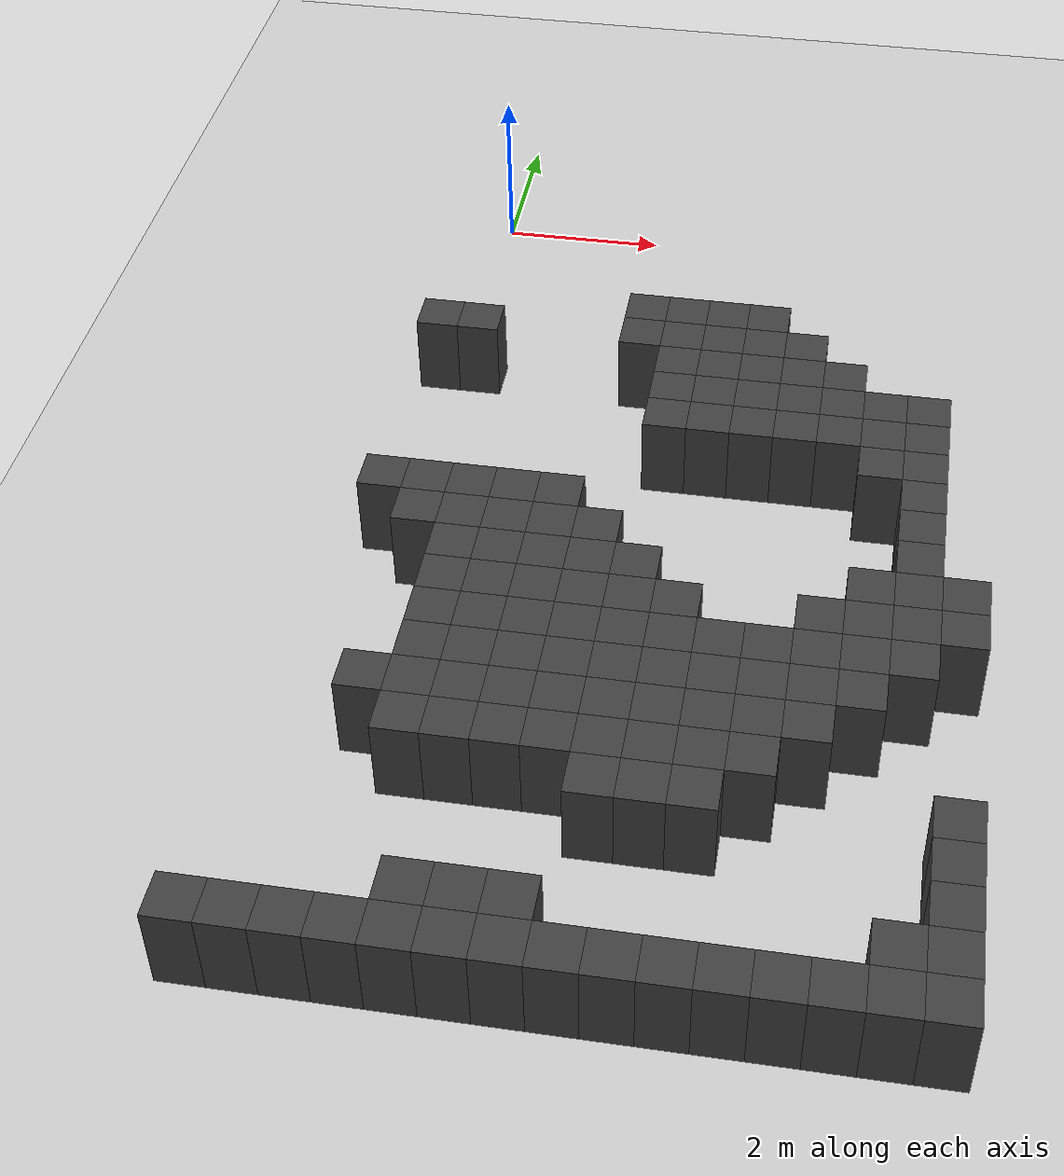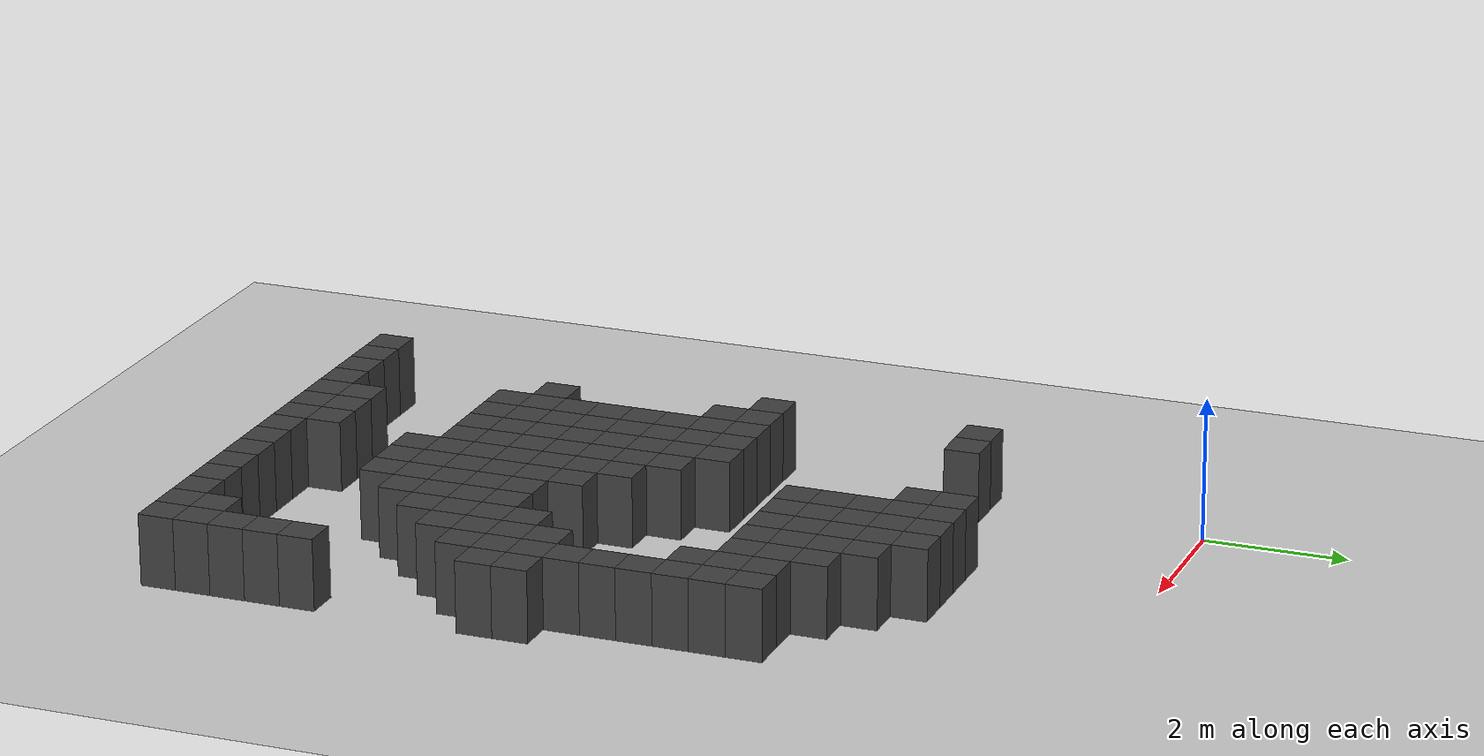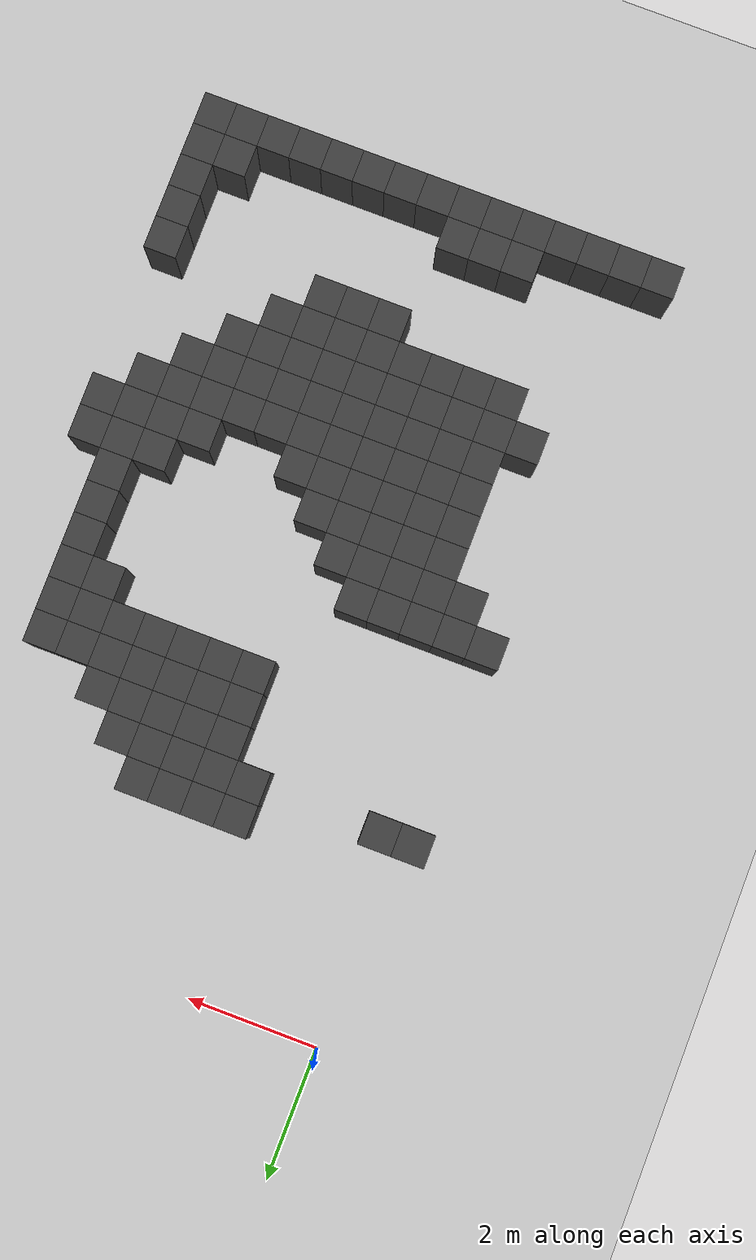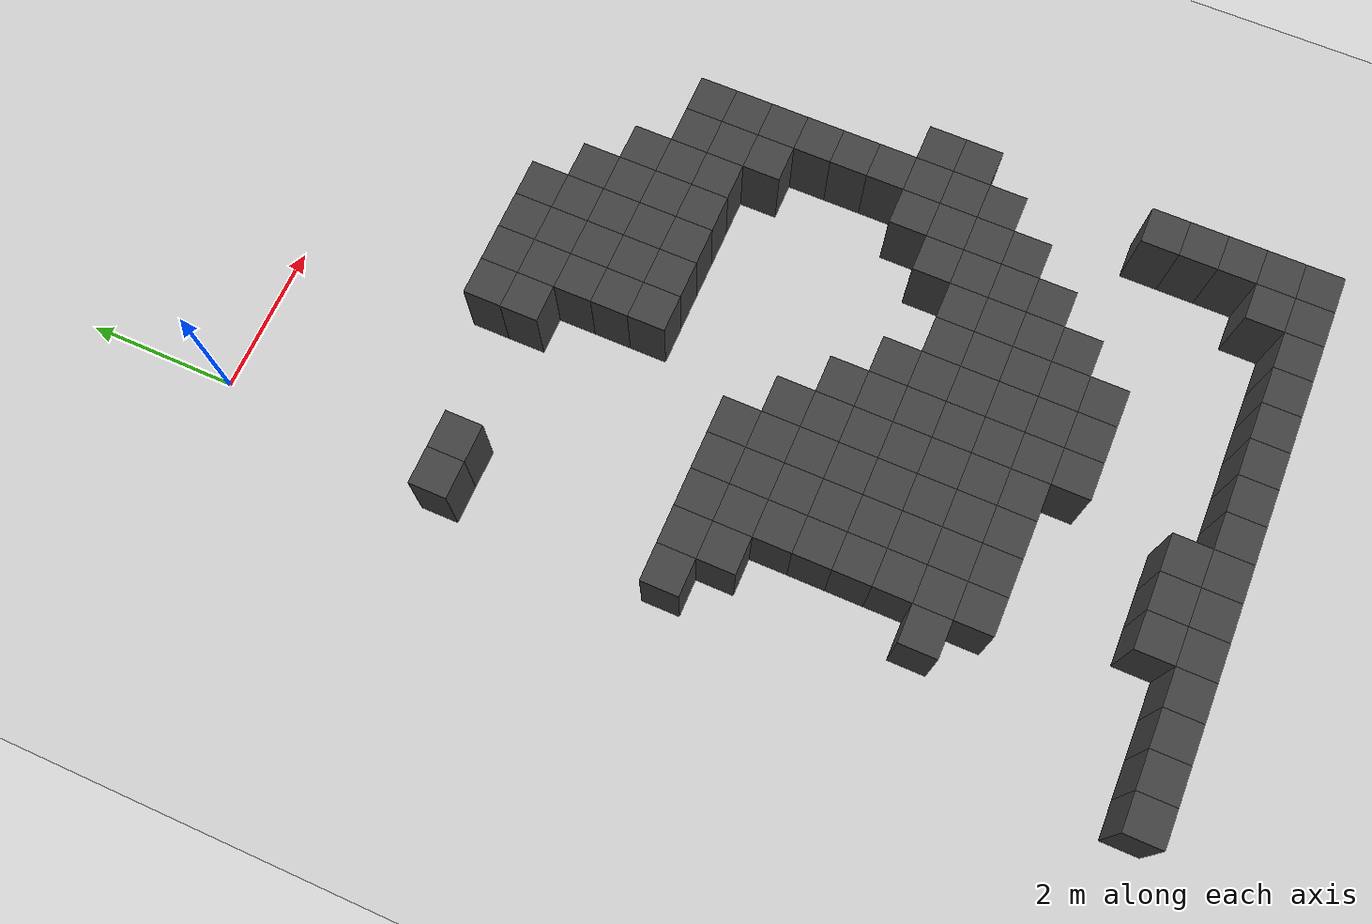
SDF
<sdf version="1.7">
 <world name="map_9544">
  <model name="ground_plane">
   <static>true</static>
   <link name="link">
    <collision name="collision">
     <geometry><plane><normal>0 0 1</normal><size>200 200</size></plane></geometry>
    </collision>
    <visual name="visual">
     <geometry><plane><normal>0 0 1</normal><size>200 200</size></plane></geometry>
     <material><ambient>0.8 0.8 0.8 1</ambient><diffuse>0.8 0.8 0.8 1</diffuse></material>
    </visual>
   </link>
  </model>
  <model name="maze_environment">
   <static>true</static>
   <link name="wall_507">
    <pose>2.250 -2.750 0.500 0 0 0</pose>
    <collision name="col"><geometry><box><size>0.5 0.5 1.0</size></box></geometry></collision>
    <visual name="vis">
     <geometry><box><size>0.5 0.5 1.0</size></box></geometry>
     <material><ambient>0.15 0.15 0.15 1</ambient><diffuse>0.25 0.25 0.25 1</diffuse></material>
    </visual>
   </link>
   <link name="wall_508">
    <pose>2.750 -2.750 0.500 0 0 0</pose>
    <collision name="col"><geometry><box><size>0.5 0.5 1.0</size></box></geometry></collision>
    <visual name="vis">
     <geometry><box><size>0.5 0.5 1.0</size></box></geometry>
     <material><ambient>0.15 0.15 0.15 1</ambient><diffuse>0.25 0.25 0.25 1</diffuse></material>
    </visual>
   </link>
   <link name="wall_509">
    <pose>3.250 -2.750 0.500 0 0 0</pose>
    <collision name="col"><geometry><box><size>0.5 0.5 1.0</size></box></geometry></collision>
    <visual name="vis">
     <geometry><box><size>0.5 0.5 1.0</size></box></geometry>
     <material><ambient>0.15 0.15 0.15 1</ambient><diffuse>0.25 0.25 0.25 1</diffuse></material>
    </visual>
   </link>
   <link name="wall_510">
    <pose>3.750 -2.750 0.500 0 0 0</pose>
    <collision name="col"><geometry><box><size>0.5 0.5 1.0</size></box></geometry></collision>
    <visual name="vis">
     <geometry><box><size>0.5 0.5 1.0</size></box></geometry>
     <material><ambient>0.15 0.15 0.15 1</ambient><diffuse>0.25 0.25 0.25 1</diffuse></material>
    </visual>
   </link>
   <link name="wall_526">
    <pose>-0.250 -3.250 0.500 0 0 0</pose>
    <collision name="col"><geometry><box><size>0.5 0.5 1.0</size></box></geometry></collision>
    <visual name="vis">
     <geometry><box><size>0.5 0.5 1.0</size></box></geometry>
     <material><ambient>0.15 0.15 0.15 1</ambient><diffuse>0.25 0.25 0.25 1</diffuse></material>
    </visual>
   </link>
   <link name="wall_527">
    <pose>0.250 -3.250 0.500 0 0 0</pose>
    <collision name="col"><geometry><box><size>0.5 0.5 1.0</size></box></geometry></collision>
    <visual name="vis">
     <geometry><box><size>0.5 0.5 1.0</size></box></geometry>
     <material><ambient>0.15 0.15 0.15 1</ambient><diffuse>0.25 0.25 0.25 1</diffuse></material>
    </visual>
   </link>
   <link name="wall_528">
    <pose>2.250 -3.250 0.500 0 0 0</pose>
    <collision name="col"><geometry><box><size>0.5 0.5 1.0</size></box></geometry></collision>
    <visual name="vis">
     <geometry><box><size>0.5 0.5 1.0</size></box></geometry>
     <material><ambient>0.15 0.15 0.15 1</ambient><diffuse>0.25 0.25 0.25 1</diffuse></material>
    </visual>
   </link>
   <link name="wall_529">
    <pose>2.750 -3.250 0.500 0 0 0</pose>
    <collision name="col"><geometry><box><size>0.5 0.5 1.0</size></box></geometry></collision>
    <visual name="vis">
     <geometry><box><size>0.5 0.5 1.0</size></box></geometry>
     <material><ambient>0.15 0.15 0.15 1</ambient><diffuse>0.25 0.25 0.25 1</diffuse></material>
    </visual>
   </link>
   <link name="wall_530">
    <pose>3.250 -3.250 0.500 0 0 0</pose>
    <collision name="col"><geometry><box><size>0.5 0.5 1.0</size></box></geometry></collision>
    <visual name="vis">
     <geometry><box><size>0.5 0.5 1.0</size></box></geometry>
     <material><ambient>0.15 0.15 0.15 1</ambient><diffuse>0.25 0.25 0.25 1</diffuse></material>
    </visual>
   </link>
   <link name="wall_531">
    <pose>3.750 -3.250 0.500 0 0 0</pose>
    <collision name="col"><geometry><box><size>0.5 0.5 1.0</size></box></geometry></collision>
    <visual name="vis">
     <geometry><box><size>0.5 0.5 1.0</size></box></geometry>
     <material><ambient>0.15 0.15 0.15 1</ambient><diffuse>0.25 0.25 0.25 1</diffuse></material>
    </visual>
   </link>
   <link name="wall_532">
    <pose>4.250 -3.250 0.500 0 0 0</pose>
    <collision name="col"><geometry><box><size>0.5 0.5 1.0</size></box></geometry></collision>
    <visual name="vis">
     <geometry><box><size>0.5 0.5 1.0</size></box></geometry>
     <material><ambient>0.15 0.15 0.15 1</ambient><diffuse>0.25 0.25 0.25 1</diffuse></material>
    </visual>
   </link>
   <link name="wall_548">
    <pose>2.750 -3.750 0.500 0 0 0</pose>
    <collision name="col"><geometry><box><size>0.5 0.5 1.0</size></box></geometry></collision>
    <visual name="vis">
     <geometry><box><size>0.5 0.5 1.0</size></box></geometry>
     <material><ambient>0.15 0.15 0.15 1</ambient><diffuse>0.25 0.25 0.25 1</diffuse></material>
    </visual>
   </link>
   <link name="wall_549">
    <pose>3.250 -3.750 0.500 0 0 0</pose>
    <collision name="col"><geometry><box><size>0.5 0.5 1.0</size></box></geometry></collision>
    <visual name="vis">
     <geometry><box><size>0.5 0.5 1.0</size></box></geometry>
     <material><ambient>0.15 0.15 0.15 1</ambient><diffuse>0.25 0.25 0.25 1</diffuse></material>
    </visual>
   </link>
   <link name="wall_550">
    <pose>3.750 -3.750 0.500 0 0 0</pose>
    <collision name="col"><geometry><box><size>0.5 0.5 1.0</size></box></geometry></collision>
    <visual name="vis">
     <geometry><box><size>0.5 0.5 1.0</size></box></geometry>
     <material><ambient>0.15 0.15 0.15 1</ambient><diffuse>0.25 0.25 0.25 1</diffuse></material>
    </visual>
   </link>
   <link name="wall_551">
    <pose>4.250 -3.750 0.500 0 0 0</pose>
    <collision name="col"><geometry><box><size>0.5 0.5 1.0</size></box></geometry></collision>
    <visual name="vis">
     <geometry><box><size>0.5 0.5 1.0</size></box></geometry>
     <material><ambient>0.15 0.15 0.15 1</ambient><diffuse>0.25 0.25 0.25 1</diffuse></material>
    </visual>
   </link>
   <link name="wall_552">
    <pose>4.750 -3.750 0.500 0 0 0</pose>
    <collision name="col"><geometry><box><size>0.5 0.5 1.0</size></box></geometry></collision>
    <visual name="vis">
     <geometry><box><size>0.5 0.5 1.0</size></box></geometry>
     <material><ambient>0.15 0.15 0.15 1</ambient><diffuse>0.25 0.25 0.25 1</diffuse></material>
    </visual>
   </link>
   <link name="wall_571">
    <pose>2.750 -4.250 0.500 0 0 0</pose>
    <collision name="col"><geometry><box><size>0.5 0.5 1.0</size></box></geometry></collision>
    <visual name="vis">
     <geometry><box><size>0.5 0.5 1.0</size></box></geometry>
     <material><ambient>0.15 0.15 0.15 1</ambient><diffuse>0.25 0.25 0.25 1</diffuse></material>
    </visual>
   </link>
   <link name="wall_572">
    <pose>3.250 -4.250 0.500 0 0 0</pose>
    <collision name="col"><geometry><box><size>0.5 0.5 1.0</size></box></geometry></collision>
    <visual name="vis">
     <geometry><box><size>0.5 0.5 1.0</size></box></geometry>
     <material><ambient>0.15 0.15 0.15 1</ambient><diffuse>0.25 0.25 0.25 1</diffuse></material>
    </visual>
   </link>
   <link name="wall_573">
    <pose>3.750 -4.250 0.500 0 0 0</pose>
    <collision name="col"><geometry><box><size>0.5 0.5 1.0</size></box></geometry></collision>
    <visual name="vis">
     <geometry><box><size>0.5 0.5 1.0</size></box></geometry>
     <material><ambient>0.15 0.15 0.15 1</ambient><diffuse>0.25 0.25 0.25 1</diffuse></material>
    </visual>
   </link>
   <link name="wall_574">
    <pose>4.250 -4.250 0.500 0 0 0</pose>
    <collision name="col"><geometry><box><size>0.5 0.5 1.0</size></box></geometry></collision>
    <visual name="vis">
     <geometry><box><size>0.5 0.5 1.0</size></box></geometry>
     <material><ambient>0.15 0.15 0.15 1</ambient><diffuse>0.25 0.25 0.25 1</diffuse></material>
    </visual>
   </link>
   <link name="wall_575">
    <pose>4.750 -4.250 0.500 0 0 0</pose>
    <collision name="col"><geometry><box><size>0.5 0.5 1.0</size></box></geometry></collision>
    <visual name="vis">
     <geometry><box><size>0.5 0.5 1.0</size></box></geometry>
     <material><ambient>0.15 0.15 0.15 1</ambient><diffuse>0.25 0.25 0.25 1</diffuse></material>
    </visual>
   </link>
   <link name="wall_576">
    <pose>5.250 -4.250 0.500 0 0 0</pose>
    <collision name="col"><geometry><box><size>0.5 0.5 1.0</size></box></geometry></collision>
    <visual name="vis">
     <geometry><box><size>0.5 0.5 1.0</size></box></geometry>
     <material><ambient>0.15 0.15 0.15 1</ambient><diffuse>0.25 0.25 0.25 1</diffuse></material>
    </visual>
   </link>
   <link name="wall_577">
    <pose>5.750 -4.250 0.500 0 0 0</pose>
    <collision name="col"><geometry><box><size>0.5 0.5 1.0</size></box></geometry></collision>
    <visual name="vis">
     <geometry><box><size>0.5 0.5 1.0</size></box></geometry>
     <material><ambient>0.15 0.15 0.15 1</ambient><diffuse>0.25 0.25 0.25 1</diffuse></material>
    </visual>
   </link>
   <link name="wall_601">
    <pose>2.750 -4.750 0.500 0 0 0</pose>
    <collision name="col"><geometry><box><size>0.5 0.5 1.0</size></box></geometry></collision>
    <visual name="vis">
     <geometry><box><size>0.5 0.5 1.0</size></box></geometry>
     <material><ambient>0.15 0.15 0.15 1</ambient><diffuse>0.25 0.25 0.25 1</diffuse></material>
    </visual>
   </link>
   <link name="wall_602">
    <pose>3.250 -4.750 0.500 0 0 0</pose>
    <collision name="col"><geometry><box><size>0.5 0.5 1.0</size></box></geometry></collision>
    <visual name="vis">
     <geometry><box><size>0.5 0.5 1.0</size></box></geometry>
     <material><ambient>0.15 0.15 0.15 1</ambient><diffuse>0.25 0.25 0.25 1</diffuse></material>
    </visual>
   </link>
   <link name="wall_603">
    <pose>3.750 -4.750 0.500 0 0 0</pose>
    <collision name="col"><geometry><box><size>0.5 0.5 1.0</size></box></geometry></collision>
    <visual name="vis">
     <geometry><box><size>0.5 0.5 1.0</size></box></geometry>
     <material><ambient>0.15 0.15 0.15 1</ambient><diffuse>0.25 0.25 0.25 1</diffuse></material>
    </visual>
   </link>
   <link name="wall_604">
    <pose>4.250 -4.750 0.500 0 0 0</pose>
    <collision name="col"><geometry><box><size>0.5 0.5 1.0</size></box></geometry></collision>
    <visual name="vis">
     <geometry><box><size>0.5 0.5 1.0</size></box></geometry>
     <material><ambient>0.15 0.15 0.15 1</ambient><diffuse>0.25 0.25 0.25 1</diffuse></material>
    </visual>
   </link>
   <link name="wall_605">
    <pose>4.750 -4.750 0.500 0 0 0</pose>
    <collision name="col"><geometry><box><size>0.5 0.5 1.0</size></box></geometry></collision>
    <visual name="vis">
     <geometry><box><size>0.5 0.5 1.0</size></box></geometry>
     <material><ambient>0.15 0.15 0.15 1</ambient><diffuse>0.25 0.25 0.25 1</diffuse></material>
    </visual>
   </link>
   <link name="wall_606">
    <pose>5.250 -4.750 0.500 0 0 0</pose>
    <collision name="col"><geometry><box><size>0.5 0.5 1.0</size></box></geometry></collision>
    <visual name="vis">
     <geometry><box><size>0.5 0.5 1.0</size></box></geometry>
     <material><ambient>0.15 0.15 0.15 1</ambient><diffuse>0.25 0.25 0.25 1</diffuse></material>
    </visual>
   </link>
   <link name="wall_607">
    <pose>5.750 -4.750 0.500 0 0 0</pose>
    <collision name="col"><geometry><box><size>0.5 0.5 1.0</size></box></geometry></collision>
    <visual name="vis">
     <geometry><box><size>0.5 0.5 1.0</size></box></geometry>
     <material><ambient>0.15 0.15 0.15 1</ambient><diffuse>0.25 0.25 0.25 1</diffuse></material>
    </visual>
   </link>
   <link name="wall_634">
    <pose>5.250 -5.250 0.500 0 0 0</pose>
    <collision name="col"><geometry><box><size>0.5 0.5 1.0</size></box></geometry></collision>
    <visual name="vis">
     <geometry><box><size>0.5 0.5 1.0</size></box></geometry>
     <material><ambient>0.15 0.15 0.15 1</ambient><diffuse>0.25 0.25 0.25 1</diffuse></material>
    </visual>
   </link>
   <link name="wall_635">
    <pose>5.750 -5.250 0.500 0 0 0</pose>
    <collision name="col"><geometry><box><size>0.5 0.5 1.0</size></box></geometry></collision>
    <visual name="vis">
     <geometry><box><size>0.5 0.5 1.0</size></box></geometry>
     <material><ambient>0.15 0.15 0.15 1</ambient><diffuse>0.25 0.25 0.25 1</diffuse></material>
    </visual>
   </link>
   <link name="wall_660">
    <pose>5.750 -5.750 0.500 0 0 0</pose>
    <collision name="col"><geometry><box><size>0.5 0.5 1.0</size></box></geometry></collision>
    <visual name="vis">
     <geometry><box><size>0.5 0.5 1.0</size></box></geometry>
     <material><ambient>0.15 0.15 0.15 1</ambient><diffuse>0.25 0.25 0.25 1</diffuse></material>
    </visual>
   </link>
   <link name="wall_684">
    <pose>-0.250 -6.250 0.500 0 0 0</pose>
    <collision name="col"><geometry><box><size>0.5 0.5 1.0</size></box></geometry></collision>
    <visual name="vis">
     <geometry><box><size>0.5 0.5 1.0</size></box></geometry>
     <material><ambient>0.15 0.15 0.15 1</ambient><diffuse>0.25 0.25 0.25 1</diffuse></material>
    </visual>
   </link>
   <link name="wall_685">
    <pose>0.250 -6.250 0.500 0 0 0</pose>
    <collision name="col"><geometry><box><size>0.5 0.5 1.0</size></box></geometry></collision>
    <visual name="vis">
     <geometry><box><size>0.5 0.5 1.0</size></box></geometry>
     <material><ambient>0.15 0.15 0.15 1</ambient><diffuse>0.25 0.25 0.25 1</diffuse></material>
    </visual>
   </link>
   <link name="wall_686">
    <pose>0.750 -6.250 0.500 0 0 0</pose>
    <collision name="col"><geometry><box><size>0.5 0.5 1.0</size></box></geometry></collision>
    <visual name="vis">
     <geometry><box><size>0.5 0.5 1.0</size></box></geometry>
     <material><ambient>0.15 0.15 0.15 1</ambient><diffuse>0.25 0.25 0.25 1</diffuse></material>
    </visual>
   </link>
   <link name="wall_687">
    <pose>1.250 -6.250 0.500 0 0 0</pose>
    <collision name="col"><geometry><box><size>0.5 0.5 1.0</size></box></geometry></collision>
    <visual name="vis">
     <geometry><box><size>0.5 0.5 1.0</size></box></geometry>
     <material><ambient>0.15 0.15 0.15 1</ambient><diffuse>0.25 0.25 0.25 1</diffuse></material>
    </visual>
   </link>
   <link name="wall_688">
    <pose>1.750 -6.250 0.500 0 0 0</pose>
    <collision name="col"><geometry><box><size>0.5 0.5 1.0</size></box></geometry></collision>
    <visual name="vis">
     <geometry><box><size>0.5 0.5 1.0</size></box></geometry>
     <material><ambient>0.15 0.15 0.15 1</ambient><diffuse>0.25 0.25 0.25 1</diffuse></material>
    </visual>
   </link>
   <link name="wall_689">
    <pose>5.750 -6.250 0.500 0 0 0</pose>
    <collision name="col"><geometry><box><size>0.5 0.5 1.0</size></box></geometry></collision>
    <visual name="vis">
     <geometry><box><size>0.5 0.5 1.0</size></box></geometry>
     <material><ambient>0.15 0.15 0.15 1</ambient><diffuse>0.25 0.25 0.25 1</diffuse></material>
    </visual>
   </link>
   <link name="wall_719">
    <pose>0.250 -6.750 0.500 0 0 0</pose>
    <collision name="col"><geometry><box><size>0.5 0.5 1.0</size></box></geometry></collision>
    <visual name="vis">
     <geometry><box><size>0.5 0.5 1.0</size></box></geometry>
     <material><ambient>0.15 0.15 0.15 1</ambient><diffuse>0.25 0.25 0.25 1</diffuse></material>
    </visual>
   </link>
   <link name="wall_720">
    <pose>0.750 -6.750 0.500 0 0 0</pose>
    <collision name="col"><geometry><box><size>0.5 0.5 1.0</size></box></geometry></collision>
    <visual name="vis">
     <geometry><box><size>0.5 0.5 1.0</size></box></geometry>
     <material><ambient>0.15 0.15 0.15 1</ambient><diffuse>0.25 0.25 0.25 1</diffuse></material>
    </visual>
   </link>
   <link name="wall_721">
    <pose>1.250 -6.750 0.500 0 0 0</pose>
    <collision name="col"><geometry><box><size>0.5 0.5 1.0</size></box></geometry></collision>
    <visual name="vis">
     <geometry><box><size>0.5 0.5 1.0</size></box></geometry>
     <material><ambient>0.15 0.15 0.15 1</ambient><diffuse>0.25 0.25 0.25 1</diffuse></material>
    </visual>
   </link>
   <link name="wall_722">
    <pose>1.750 -6.750 0.500 0 0 0</pose>
    <collision name="col"><geometry><box><size>0.5 0.5 1.0</size></box></geometry></collision>
    <visual name="vis">
     <geometry><box><size>0.5 0.5 1.0</size></box></geometry>
     <material><ambient>0.15 0.15 0.15 1</ambient><diffuse>0.25 0.25 0.25 1</diffuse></material>
    </visual>
   </link>
   <link name="wall_723">
    <pose>2.250 -6.750 0.500 0 0 0</pose>
    <collision name="col"><geometry><box><size>0.5 0.5 1.0</size></box></geometry></collision>
    <visual name="vis">
     <geometry><box><size>0.5 0.5 1.0</size></box></geometry>
     <material><ambient>0.15 0.15 0.15 1</ambient><diffuse>0.25 0.25 0.25 1</diffuse></material>
    </visual>
   </link>
   <link name="wall_724">
    <pose>5.750 -6.750 0.500 0 0 0</pose>
    <collision name="col"><geometry><box><size>0.5 0.5 1.0</size></box></geometry></collision>
    <visual name="vis">
     <geometry><box><size>0.5 0.5 1.0</size></box></geometry>
     <material><ambient>0.15 0.15 0.15 1</ambient><diffuse>0.25 0.25 0.25 1</diffuse></material>
    </visual>
   </link>
   <link name="wall_752">
    <pose>0.750 -7.250 0.500 0 0 0</pose>
    <collision name="col"><geometry><box><size>0.5 0.5 1.0</size></box></geometry></collision>
    <visual name="vis">
     <geometry><box><size>0.5 0.5 1.0</size></box></geometry>
     <material><ambient>0.15 0.15 0.15 1</ambient><diffuse>0.25 0.25 0.25 1</diffuse></material>
    </visual>
   </link>
   <link name="wall_753">
    <pose>1.250 -7.250 0.500 0 0 0</pose>
    <collision name="col"><geometry><box><size>0.5 0.5 1.0</size></box></geometry></collision>
    <visual name="vis">
     <geometry><box><size>0.5 0.5 1.0</size></box></geometry>
     <material><ambient>0.15 0.15 0.15 1</ambient><diffuse>0.25 0.25 0.25 1</diffuse></material>
    </visual>
   </link>
   <link name="wall_754">
    <pose>1.750 -7.250 0.500 0 0 0</pose>
    <collision name="col"><geometry><box><size>0.5 0.5 1.0</size></box></geometry></collision>
    <visual name="vis">
     <geometry><box><size>0.5 0.5 1.0</size></box></geometry>
     <material><ambient>0.15 0.15 0.15 1</ambient><diffuse>0.25 0.25 0.25 1</diffuse></material>
    </visual>
   </link>
   <link name="wall_755">
    <pose>2.250 -7.250 0.500 0 0 0</pose>
    <collision name="col"><geometry><box><size>0.5 0.5 1.0</size></box></geometry></collision>
    <visual name="vis">
     <geometry><box><size>0.5 0.5 1.0</size></box></geometry>
     <material><ambient>0.15 0.15 0.15 1</ambient><diffuse>0.25 0.25 0.25 1</diffuse></material>
    </visual>
   </link>
   <link name="wall_756">
    <pose>2.750 -7.250 0.500 0 0 0</pose>
    <collision name="col"><geometry><box><size>0.5 0.5 1.0</size></box></geometry></collision>
    <visual name="vis">
     <geometry><box><size>0.5 0.5 1.0</size></box></geometry>
     <material><ambient>0.15 0.15 0.15 1</ambient><diffuse>0.25 0.25 0.25 1</diffuse></material>
    </visual>
   </link>
   <link name="wall_757">
    <pose>5.250 -7.250 0.500 0 0 0</pose>
    <collision name="col"><geometry><box><size>0.5 0.5 1.0</size></box></geometry></collision>
    <visual name="vis">
     <geometry><box><size>0.5 0.5 1.0</size></box></geometry>
     <material><ambient>0.15 0.15 0.15 1</ambient><diffuse>0.25 0.25 0.25 1</diffuse></material>
    </visual>
   </link>
   <link name="wall_758">
    <pose>5.750 -7.250 0.500 0 0 0</pose>
    <collision name="col"><geometry><box><size>0.5 0.5 1.0</size></box></geometry></collision>
    <visual name="vis">
     <geometry><box><size>0.5 0.5 1.0</size></box></geometry>
     <material><ambient>0.15 0.15 0.15 1</ambient><diffuse>0.25 0.25 0.25 1</diffuse></material>
    </visual>
   </link>
   <link name="wall_759">
    <pose>6.250 -7.250 0.500 0 0 0</pose>
    <collision name="col"><geometry><box><size>0.5 0.5 1.0</size></box></geometry></collision>
    <visual name="vis">
     <geometry><box><size>0.5 0.5 1.0</size></box></geometry>
     <material><ambient>0.15 0.15 0.15 1</ambient><diffuse>0.25 0.25 0.25 1</diffuse></material>
    </visual>
   </link>
   <link name="wall_782">
    <pose>0.750 -7.750 0.500 0 0 0</pose>
    <collision name="col"><geometry><box><size>0.5 0.5 1.0</size></box></geometry></collision>
    <visual name="vis">
     <geometry><box><size>0.5 0.5 1.0</size></box></geometry>
     <material><ambient>0.15 0.15 0.15 1</ambient><diffuse>0.25 0.25 0.25 1</diffuse></material>
    </visual>
   </link>
   <link name="wall_783">
    <pose>1.250 -7.750 0.500 0 0 0</pose>
    <collision name="col"><geometry><box><size>0.5 0.5 1.0</size></box></geometry></collision>
    <visual name="vis">
     <geometry><box><size>0.5 0.5 1.0</size></box></geometry>
     <material><ambient>0.15 0.15 0.15 1</ambient><diffuse>0.25 0.25 0.25 1</diffuse></material>
    </visual>
   </link>
   <link name="wall_784">
    <pose>1.750 -7.750 0.500 0 0 0</pose>
    <collision name="col"><geometry><box><size>0.5 0.5 1.0</size></box></geometry></collision>
    <visual name="vis">
     <geometry><box><size>0.5 0.5 1.0</size></box></geometry>
     <material><ambient>0.15 0.15 0.15 1</ambient><diffuse>0.25 0.25 0.25 1</diffuse></material>
    </visual>
   </link>
   <link name="wall_785">
    <pose>2.250 -7.750 0.500 0 0 0</pose>
    <collision name="col"><geometry><box><size>0.5 0.5 1.0</size></box></geometry></collision>
    <visual name="vis">
     <geometry><box><size>0.5 0.5 1.0</size></box></geometry>
     <material><ambient>0.15 0.15 0.15 1</ambient><diffuse>0.25 0.25 0.25 1</diffuse></material>
    </visual>
   </link>
   <link name="wall_786">
    <pose>2.750 -7.750 0.500 0 0 0</pose>
    <collision name="col"><geometry><box><size>0.5 0.5 1.0</size></box></geometry></collision>
    <visual name="vis">
     <geometry><box><size>0.5 0.5 1.0</size></box></geometry>
     <material><ambient>0.15 0.15 0.15 1</ambient><diffuse>0.25 0.25 0.25 1</diffuse></material>
    </visual>
   </link>
   <link name="wall_787">
    <pose>3.250 -7.750 0.500 0 0 0</pose>
    <collision name="col"><geometry><box><size>0.5 0.5 1.0</size></box></geometry></collision>
    <visual name="vis">
     <geometry><box><size>0.5 0.5 1.0</size></box></geometry>
     <material><ambient>0.15 0.15 0.15 1</ambient><diffuse>0.25 0.25 0.25 1</diffuse></material>
    </visual>
   </link>
   <link name="wall_788">
    <pose>4.750 -7.750 0.500 0 0 0</pose>
    <collision name="col"><geometry><box><size>0.5 0.5 1.0</size></box></geometry></collision>
    <visual name="vis">
     <geometry><box><size>0.5 0.5 1.0</size></box></geometry>
     <material><ambient>0.15 0.15 0.15 1</ambient><diffuse>0.25 0.25 0.25 1</diffuse></material>
    </visual>
   </link>
   <link name="wall_789">
    <pose>5.250 -7.750 0.500 0 0 0</pose>
    <collision name="col"><geometry><box><size>0.5 0.5 1.0</size></box></geometry></collision>
    <visual name="vis">
     <geometry><box><size>0.5 0.5 1.0</size></box></geometry>
     <material><ambient>0.15 0.15 0.15 1</ambient><diffuse>0.25 0.25 0.25 1</diffuse></material>
    </visual>
   </link>
   <link name="wall_790">
    <pose>5.750 -7.750 0.500 0 0 0</pose>
    <collision name="col"><geometry><box><size>0.5 0.5 1.0</size></box></geometry></collision>
    <visual name="vis">
     <geometry><box><size>0.5 0.5 1.0</size></box></geometry>
     <material><ambient>0.15 0.15 0.15 1</ambient><diffuse>0.25 0.25 0.25 1</diffuse></material>
    </visual>
   </link>
   <link name="wall_791">
    <pose>6.250 -7.750 0.500 0 0 0</pose>
    <collision name="col"><geometry><box><size>0.5 0.5 1.0</size></box></geometry></collision>
    <visual name="vis">
     <geometry><box><size>0.5 0.5 1.0</size></box></geometry>
     <material><ambient>0.15 0.15 0.15 1</ambient><diffuse>0.25 0.25 0.25 1</diffuse></material>
    </visual>
   </link>
   <link name="wall_805">
    <pose>0.750 -8.250 0.500 0 0 0</pose>
    <collision name="col"><geometry><box><size>0.5 0.5 1.0</size></box></geometry></collision>
    <visual name="vis">
     <geometry><box><size>0.5 0.5 1.0</size></box></geometry>
     <material><ambient>0.15 0.15 0.15 1</ambient><diffuse>0.25 0.25 0.25 1</diffuse></material>
    </visual>
   </link>
   <link name="wall_806">
    <pose>1.250 -8.250 0.500 0 0 0</pose>
    <collision name="col"><geometry><box><size>0.5 0.5 1.0</size></box></geometry></collision>
    <visual name="vis">
     <geometry><box><size>0.5 0.5 1.0</size></box></geometry>
     <material><ambient>0.15 0.15 0.15 1</ambient><diffuse>0.25 0.25 0.25 1</diffuse></material>
    </visual>
   </link>
   <link name="wall_807">
    <pose>1.750 -8.250 0.500 0 0 0</pose>
    <collision name="col"><geometry><box><size>0.5 0.5 1.0</size></box></geometry></collision>
    <visual name="vis">
     <geometry><box><size>0.5 0.5 1.0</size></box></geometry>
     <material><ambient>0.15 0.15 0.15 1</ambient><diffuse>0.25 0.25 0.25 1</diffuse></material>
    </visual>
   </link>
   <link name="wall_808">
    <pose>2.250 -8.250 0.500 0 0 0</pose>
    <collision name="col"><geometry><box><size>0.5 0.5 1.0</size></box></geometry></collision>
    <visual name="vis">
     <geometry><box><size>0.5 0.5 1.0</size></box></geometry>
     <material><ambient>0.15 0.15 0.15 1</ambient><diffuse>0.25 0.25 0.25 1</diffuse></material>
    </visual>
   </link>
   <link name="wall_809">
    <pose>2.750 -8.250 0.500 0 0 0</pose>
    <collision name="col"><geometry><box><size>0.5 0.5 1.0</size></box></geometry></collision>
    <visual name="vis">
     <geometry><box><size>0.5 0.5 1.0</size></box></geometry>
     <material><ambient>0.15 0.15 0.15 1</ambient><diffuse>0.25 0.25 0.25 1</diffuse></material>
    </visual>
   </link>
   <link name="wall_810">
    <pose>3.250 -8.250 0.500 0 0 0</pose>
    <collision name="col"><geometry><box><size>0.5 0.5 1.0</size></box></geometry></collision>
    <visual name="vis">
     <geometry><box><size>0.5 0.5 1.0</size></box></geometry>
     <material><ambient>0.15 0.15 0.15 1</ambient><diffuse>0.25 0.25 0.25 1</diffuse></material>
    </visual>
   </link>
   <link name="wall_811">
    <pose>3.750 -8.250 0.500 0 0 0</pose>
    <collision name="col"><geometry><box><size>0.5 0.5 1.0</size></box></geometry></collision>
    <visual name="vis">
     <geometry><box><size>0.5 0.5 1.0</size></box></geometry>
     <material><ambient>0.15 0.15 0.15 1</ambient><diffuse>0.25 0.25 0.25 1</diffuse></material>
    </visual>
   </link>
   <link name="wall_812">
    <pose>4.250 -8.250 0.500 0 0 0</pose>
    <collision name="col"><geometry><box><size>0.5 0.5 1.0</size></box></geometry></collision>
    <visual name="vis">
     <geometry><box><size>0.5 0.5 1.0</size></box></geometry>
     <material><ambient>0.15 0.15 0.15 1</ambient><diffuse>0.25 0.25 0.25 1</diffuse></material>
    </visual>
   </link>
   <link name="wall_813">
    <pose>4.750 -8.250 0.500 0 0 0</pose>
    <collision name="col"><geometry><box><size>0.5 0.5 1.0</size></box></geometry></collision>
    <visual name="vis">
     <geometry><box><size>0.5 0.5 1.0</size></box></geometry>
     <material><ambient>0.15 0.15 0.15 1</ambient><diffuse>0.25 0.25 0.25 1</diffuse></material>
    </visual>
   </link>
   <link name="wall_814">
    <pose>5.250 -8.250 0.500 0 0 0</pose>
    <collision name="col"><geometry><box><size>0.5 0.5 1.0</size></box></geometry></collision>
    <visual name="vis">
     <geometry><box><size>0.5 0.5 1.0</size></box></geometry>
     <material><ambient>0.15 0.15 0.15 1</ambient><diffuse>0.25 0.25 0.25 1</diffuse></material>
    </visual>
   </link>
   <link name="wall_815">
    <pose>5.750 -8.250 0.500 0 0 0</pose>
    <collision name="col"><geometry><box><size>0.5 0.5 1.0</size></box></geometry></collision>
    <visual name="vis">
     <geometry><box><size>0.5 0.5 1.0</size></box></geometry>
     <material><ambient>0.15 0.15 0.15 1</ambient><diffuse>0.25 0.25 0.25 1</diffuse></material>
    </visual>
   </link>
   <link name="wall_826">
    <pose>0.750 -8.750 0.500 0 0 0</pose>
    <collision name="col"><geometry><box><size>0.5 0.5 1.0</size></box></geometry></collision>
    <visual name="vis">
     <geometry><box><size>0.5 0.5 1.0</size></box></geometry>
     <material><ambient>0.15 0.15 0.15 1</ambient><diffuse>0.25 0.25 0.25 1</diffuse></material>
    </visual>
   </link>
   <link name="wall_827">
    <pose>1.250 -8.750 0.500 0 0 0</pose>
    <collision name="col"><geometry><box><size>0.5 0.5 1.0</size></box></geometry></collision>
    <visual name="vis">
     <geometry><box><size>0.5 0.5 1.0</size></box></geometry>
     <material><ambient>0.15 0.15 0.15 1</ambient><diffuse>0.25 0.25 0.25 1</diffuse></material>
    </visual>
   </link>
   <link name="wall_828">
    <pose>1.750 -8.750 0.500 0 0 0</pose>
    <collision name="col"><geometry><box><size>0.5 0.5 1.0</size></box></geometry></collision>
    <visual name="vis">
     <geometry><box><size>0.5 0.5 1.0</size></box></geometry>
     <material><ambient>0.15 0.15 0.15 1</ambient><diffuse>0.25 0.25 0.25 1</diffuse></material>
    </visual>
   </link>
   <link name="wall_829">
    <pose>2.250 -8.750 0.500 0 0 0</pose>
    <collision name="col"><geometry><box><size>0.5 0.5 1.0</size></box></geometry></collision>
    <visual name="vis">
     <geometry><box><size>0.5 0.5 1.0</size></box></geometry>
     <material><ambient>0.15 0.15 0.15 1</ambient><diffuse>0.25 0.25 0.25 1</diffuse></material>
    </visual>
   </link>
   <link name="wall_830">
    <pose>2.750 -8.750 0.500 0 0 0</pose>
    <collision name="col"><geometry><box><size>0.5 0.5 1.0</size></box></geometry></collision>
    <visual name="vis">
     <geometry><box><size>0.5 0.5 1.0</size></box></geometry>
     <material><ambient>0.15 0.15 0.15 1</ambient><diffuse>0.25 0.25 0.25 1</diffuse></material>
    </visual>
   </link>
   <link name="wall_831">
    <pose>3.250 -8.750 0.500 0 0 0</pose>
    <collision name="col"><geometry><box><size>0.5 0.5 1.0</size></box></geometry></collision>
    <visual name="vis">
     <geometry><box><size>0.5 0.5 1.0</size></box></geometry>
     <material><ambient>0.15 0.15 0.15 1</ambient><diffuse>0.25 0.25 0.25 1</diffuse></material>
    </visual>
   </link>
   <link name="wall_832">
    <pose>3.750 -8.750 0.500 0 0 0</pose>
    <collision name="col"><geometry><box><size>0.5 0.5 1.0</size></box></geometry></collision>
    <visual name="vis">
     <geometry><box><size>0.5 0.5 1.0</size></box></geometry>
     <material><ambient>0.15 0.15 0.15 1</ambient><diffuse>0.25 0.25 0.25 1</diffuse></material>
    </visual>
   </link>
   <link name="wall_833">
    <pose>4.250 -8.750 0.500 0 0 0</pose>
    <collision name="col"><geometry><box><size>0.5 0.5 1.0</size></box></geometry></collision>
    <visual name="vis">
     <geometry><box><size>0.5 0.5 1.0</size></box></geometry>
     <material><ambient>0.15 0.15 0.15 1</ambient><diffuse>0.25 0.25 0.25 1</diffuse></material>
    </visual>
   </link>
   <link name="wall_834">
    <pose>4.750 -8.750 0.500 0 0 0</pose>
    <collision name="col"><geometry><box><size>0.5 0.5 1.0</size></box></geometry></collision>
    <visual name="vis">
     <geometry><box><size>0.5 0.5 1.0</size></box></geometry>
     <material><ambient>0.15 0.15 0.15 1</ambient><diffuse>0.25 0.25 0.25 1</diffuse></material>
    </visual>
   </link>
   <link name="wall_835">
    <pose>5.250 -8.750 0.500 0 0 0</pose>
    <collision name="col"><geometry><box><size>0.5 0.5 1.0</size></box></geometry></collision>
    <visual name="vis">
     <geometry><box><size>0.5 0.5 1.0</size></box></geometry>
     <material><ambient>0.15 0.15 0.15 1</ambient><diffuse>0.25 0.25 0.25 1</diffuse></material>
    </visual>
   </link>
   <link name="wall_849">
    <pose>0.250 -9.250 0.500 0 0 0</pose>
    <collision name="col"><geometry><box><size>0.5 0.5 1.0</size></box></geometry></collision>
    <visual name="vis">
     <geometry><box><size>0.5 0.5 1.0</size></box></geometry>
     <material><ambient>0.15 0.15 0.15 1</ambient><diffuse>0.25 0.25 0.25 1</diffuse></material>
    </visual>
   </link>
   <link name="wall_850">
    <pose>0.750 -9.250 0.500 0 0 0</pose>
    <collision name="col"><geometry><box><size>0.5 0.5 1.0</size></box></geometry></collision>
    <visual name="vis">
     <geometry><box><size>0.5 0.5 1.0</size></box></geometry>
     <material><ambient>0.15 0.15 0.15 1</ambient><diffuse>0.25 0.25 0.25 1</diffuse></material>
    </visual>
   </link>
   <link name="wall_851">
    <pose>1.250 -9.250 0.500 0 0 0</pose>
    <collision name="col"><geometry><box><size>0.5 0.5 1.0</size></box></geometry></collision>
    <visual name="vis">
     <geometry><box><size>0.5 0.5 1.0</size></box></geometry>
     <material><ambient>0.15 0.15 0.15 1</ambient><diffuse>0.25 0.25 0.25 1</diffuse></material>
    </visual>
   </link>
   <link name="wall_852">
    <pose>1.750 -9.250 0.500 0 0 0</pose>
    <collision name="col"><geometry><box><size>0.5 0.5 1.0</size></box></geometry></collision>
    <visual name="vis">
     <geometry><box><size>0.5 0.5 1.0</size></box></geometry>
     <material><ambient>0.15 0.15 0.15 1</ambient><diffuse>0.25 0.25 0.25 1</diffuse></material>
    </visual>
   </link>
   <link name="wall_853">
    <pose>2.250 -9.250 0.500 0 0 0</pose>
    <collision name="col"><geometry><box><size>0.5 0.5 1.0</size></box></geometry></collision>
    <visual name="vis">
     <geometry><box><size>0.5 0.5 1.0</size></box></geometry>
     <material><ambient>0.15 0.15 0.15 1</ambient><diffuse>0.25 0.25 0.25 1</diffuse></material>
    </visual>
   </link>
   <link name="wall_854">
    <pose>2.750 -9.250 0.500 0 0 0</pose>
    <collision name="col"><geometry><box><size>0.5 0.5 1.0</size></box></geometry></collision>
    <visual name="vis">
     <geometry><box><size>0.5 0.5 1.0</size></box></geometry>
     <material><ambient>0.15 0.15 0.15 1</ambient><diffuse>0.25 0.25 0.25 1</diffuse></material>
    </visual>
   </link>
   <link name="wall_855">
    <pose>3.250 -9.250 0.500 0 0 0</pose>
    <collision name="col"><geometry><box><size>0.5 0.5 1.0</size></box></geometry></collision>
    <visual name="vis">
     <geometry><box><size>0.5 0.5 1.0</size></box></geometry>
     <material><ambient>0.15 0.15 0.15 1</ambient><diffuse>0.25 0.25 0.25 1</diffuse></material>
    </visual>
   </link>
   <link name="wall_856">
    <pose>3.750 -9.250 0.500 0 0 0</pose>
    <collision name="col"><geometry><box><size>0.5 0.5 1.0</size></box></geometry></collision>
    <visual name="vis">
     <geometry><box><size>0.5 0.5 1.0</size></box></geometry>
     <material><ambient>0.15 0.15 0.15 1</ambient><diffuse>0.25 0.25 0.25 1</diffuse></material>
    </visual>
   </link>
   <link name="wall_857">
    <pose>4.250 -9.250 0.500 0 0 0</pose>
    <collision name="col"><geometry><box><size>0.5 0.5 1.0</size></box></geometry></collision>
    <visual name="vis">
     <geometry><box><size>0.5 0.5 1.0</size></box></geometry>
     <material><ambient>0.15 0.15 0.15 1</ambient><diffuse>0.25 0.25 0.25 1</diffuse></material>
    </visual>
   </link>
   <link name="wall_858">
    <pose>4.750 -9.250 0.500 0 0 0</pose>
    <collision name="col"><geometry><box><size>0.5 0.5 1.0</size></box></geometry></collision>
    <visual name="vis">
     <geometry><box><size>0.5 0.5 1.0</size></box></geometry>
     <material><ambient>0.15 0.15 0.15 1</ambient><diffuse>0.25 0.25 0.25 1</diffuse></material>
    </visual>
   </link>
   <link name="wall_877">
    <pose>0.750 -9.750 0.500 0 0 0</pose>
    <collision name="col"><geometry><box><size>0.5 0.5 1.0</size></box></geometry></collision>
    <visual name="vis">
     <geometry><box><size>0.5 0.5 1.0</size></box></geometry>
     <material><ambient>0.15 0.15 0.15 1</ambient><diffuse>0.25 0.25 0.25 1</diffuse></material>
    </visual>
   </link>
   <link name="wall_878">
    <pose>1.250 -9.750 0.500 0 0 0</pose>
    <collision name="col"><geometry><box><size>0.5 0.5 1.0</size></box></geometry></collision>
    <visual name="vis">
     <geometry><box><size>0.5 0.5 1.0</size></box></geometry>
     <material><ambient>0.15 0.15 0.15 1</ambient><diffuse>0.25 0.25 0.25 1</diffuse></material>
    </visual>
   </link>
   <link name="wall_879">
    <pose>1.750 -9.750 0.500 0 0 0</pose>
    <collision name="col"><geometry><box><size>0.5 0.5 1.0</size></box></geometry></collision>
    <visual name="vis">
     <geometry><box><size>0.5 0.5 1.0</size></box></geometry>
     <material><ambient>0.15 0.15 0.15 1</ambient><diffuse>0.25 0.25 0.25 1</diffuse></material>
    </visual>
   </link>
   <link name="wall_880">
    <pose>2.250 -9.750 0.500 0 0 0</pose>
    <collision name="col"><geometry><box><size>0.5 0.5 1.0</size></box></geometry></collision>
    <visual name="vis">
     <geometry><box><size>0.5 0.5 1.0</size></box></geometry>
     <material><ambient>0.15 0.15 0.15 1</ambient><diffuse>0.25 0.25 0.25 1</diffuse></material>
    </visual>
   </link>
   <link name="wall_881">
    <pose>2.750 -9.750 0.500 0 0 0</pose>
    <collision name="col"><geometry><box><size>0.5 0.5 1.0</size></box></geometry></collision>
    <visual name="vis">
     <geometry><box><size>0.5 0.5 1.0</size></box></geometry>
     <material><ambient>0.15 0.15 0.15 1</ambient><diffuse>0.25 0.25 0.25 1</diffuse></material>
    </visual>
   </link>
   <link name="wall_882">
    <pose>3.250 -9.750 0.500 0 0 0</pose>
    <collision name="col"><geometry><box><size>0.5 0.5 1.0</size></box></geometry></collision>
    <visual name="vis">
     <geometry><box><size>0.5 0.5 1.0</size></box></geometry>
     <material><ambient>0.15 0.15 0.15 1</ambient><diffuse>0.25 0.25 0.25 1</diffuse></material>
    </visual>
   </link>
   <link name="wall_883">
    <pose>3.750 -9.750 0.500 0 0 0</pose>
    <collision name="col"><geometry><box><size>0.5 0.5 1.0</size></box></geometry></collision>
    <visual name="vis">
     <geometry><box><size>0.5 0.5 1.0</size></box></geometry>
     <material><ambient>0.15 0.15 0.15 1</ambient><diffuse>0.25 0.25 0.25 1</diffuse></material>
    </visual>
   </link>
   <link name="wall_884">
    <pose>4.250 -9.750 0.500 0 0 0</pose>
    <collision name="col"><geometry><box><size>0.5 0.5 1.0</size></box></geometry></collision>
    <visual name="vis">
     <geometry><box><size>0.5 0.5 1.0</size></box></geometry>
     <material><ambient>0.15 0.15 0.15 1</ambient><diffuse>0.25 0.25 0.25 1</diffuse></material>
    </visual>
   </link>
   <link name="wall_904">
    <pose>2.750 -10.250 0.500 0 0 0</pose>
    <collision name="col"><geometry><box><size>0.5 0.5 1.0</size></box></geometry></collision>
    <visual name="vis">
     <geometry><box><size>0.5 0.5 1.0</size></box></geometry>
     <material><ambient>0.15 0.15 0.15 1</ambient><diffuse>0.25 0.25 0.25 1</diffuse></material>
    </visual>
   </link>
   <link name="wall_905">
    <pose>3.250 -10.250 0.500 0 0 0</pose>
    <collision name="col"><geometry><box><size>0.5 0.5 1.0</size></box></geometry></collision>
    <visual name="vis">
     <geometry><box><size>0.5 0.5 1.0</size></box></geometry>
     <material><ambient>0.15 0.15 0.15 1</ambient><diffuse>0.25 0.25 0.25 1</diffuse></material>
    </visual>
   </link>
   <link name="wall_906">
    <pose>3.750 -10.250 0.500 0 0 0</pose>
    <collision name="col"><geometry><box><size>0.5 0.5 1.0</size></box></geometry></collision>
    <visual name="vis">
     <geometry><box><size>0.5 0.5 1.0</size></box></geometry>
     <material><ambient>0.15 0.15 0.15 1</ambient><diffuse>0.25 0.25 0.25 1</diffuse></material>
    </visual>
   </link>
   <link name="wall_907">
    <pose>6.250 -10.250 0.500 0 0 0</pose>
    <collision name="col"><geometry><box><size>0.5 0.5 1.0</size></box></geometry></collision>
    <visual name="vis">
     <geometry><box><size>0.5 0.5 1.0</size></box></geometry>
     <material><ambient>0.15 0.15 0.15 1</ambient><diffuse>0.25 0.25 0.25 1</diffuse></material>
    </visual>
   </link>
   <link name="wall_922">
    <pose>6.250 -10.750 0.500 0 0 0</pose>
    <collision name="col"><geometry><box><size>0.5 0.5 1.0</size></box></geometry></collision>
    <visual name="vis">
     <geometry><box><size>0.5 0.5 1.0</size></box></geometry>
     <material><ambient>0.15 0.15 0.15 1</ambient><diffuse>0.25 0.25 0.25 1</diffuse></material>
    </visual>
   </link>
   <link name="wall_935">
    <pose>6.250 -11.250 0.500 0 0 0</pose>
    <collision name="col"><geometry><box><size>0.5 0.5 1.0</size></box></geometry></collision>
    <visual name="vis">
     <geometry><box><size>0.5 0.5 1.0</size></box></geometry>
     <material><ambient>0.15 0.15 0.15 1</ambient><diffuse>0.25 0.25 0.25 1</diffuse></material>
    </visual>
   </link>
   <link name="wall_954">
    <pose>1.250 -11.750 0.500 0 0 0</pose>
    <collision name="col"><geometry><box><size>0.5 0.5 1.0</size></box></geometry></collision>
    <visual name="vis">
     <geometry><box><size>0.5 0.5 1.0</size></box></geometry>
     <material><ambient>0.15 0.15 0.15 1</ambient><diffuse>0.25 0.25 0.25 1</diffuse></material>
    </visual>
   </link>
   <link name="wall_955">
    <pose>1.750 -11.750 0.500 0 0 0</pose>
    <collision name="col"><geometry><box><size>0.5 0.5 1.0</size></box></geometry></collision>
    <visual name="vis">
     <geometry><box><size>0.5 0.5 1.0</size></box></geometry>
     <material><ambient>0.15 0.15 0.15 1</ambient><diffuse>0.25 0.25 0.25 1</diffuse></material>
    </visual>
   </link>
   <link name="wall_956">
    <pose>2.250 -11.750 0.500 0 0 0</pose>
    <collision name="col"><geometry><box><size>0.5 0.5 1.0</size></box></geometry></collision>
    <visual name="vis">
     <geometry><box><size>0.5 0.5 1.0</size></box></geometry>
     <material><ambient>0.15 0.15 0.15 1</ambient><diffuse>0.25 0.25 0.25 1</diffuse></material>
    </visual>
   </link>
   <link name="wall_957">
    <pose>5.750 -11.750 0.500 0 0 0</pose>
    <collision name="col"><geometry><box><size>0.5 0.5 1.0</size></box></geometry></collision>
    <visual name="vis">
     <geometry><box><size>0.5 0.5 1.0</size></box></geometry>
     <material><ambient>0.15 0.15 0.15 1</ambient><diffuse>0.25 0.25 0.25 1</diffuse></material>
    </visual>
   </link>
   <link name="wall_958">
    <pose>6.250 -11.750 0.500 0 0 0</pose>
    <collision name="col"><geometry><box><size>0.5 0.5 1.0</size></box></geometry></collision>
    <visual name="vis">
     <geometry><box><size>0.5 0.5 1.0</size></box></geometry>
     <material><ambient>0.15 0.15 0.15 1</ambient><diffuse>0.25 0.25 0.25 1</diffuse></material>
    </visual>
   </link>
   <link name="wall_991">
    <pose>-0.750 -12.250 0.500 0 0 0</pose>
    <collision name="col"><geometry><box><size>0.5 0.5 1.0</size></box></geometry></collision>
    <visual name="vis">
     <geometry><box><size>0.5 0.5 1.0</size></box></geometry>
     <material><ambient>0.15 0.15 0.15 1</ambient><diffuse>0.25 0.25 0.25 1</diffuse></material>
    </visual>
   </link>
   <link name="wall_992">
    <pose>-0.250 -12.250 0.500 0 0 0</pose>
    <collision name="col"><geometry><box><size>0.5 0.5 1.0</size></box></geometry></collision>
    <visual name="vis">
     <geometry><box><size>0.5 0.5 1.0</size></box></geometry>
     <material><ambient>0.15 0.15 0.15 1</ambient><diffuse>0.25 0.25 0.25 1</diffuse></material>
    </visual>
   </link>
   <link name="wall_993">
    <pose>0.250 -12.250 0.500 0 0 0</pose>
    <collision name="col"><geometry><box><size>0.5 0.5 1.0</size></box></geometry></collision>
    <visual name="vis">
     <geometry><box><size>0.5 0.5 1.0</size></box></geometry>
     <material><ambient>0.15 0.15 0.15 1</ambient><diffuse>0.25 0.25 0.25 1</diffuse></material>
    </visual>
   </link>
   <link name="wall_994">
    <pose>0.750 -12.250 0.500 0 0 0</pose>
    <collision name="col"><geometry><box><size>0.5 0.5 1.0</size></box></geometry></collision>
    <visual name="vis">
     <geometry><box><size>0.5 0.5 1.0</size></box></geometry>
     <material><ambient>0.15 0.15 0.15 1</ambient><diffuse>0.25 0.25 0.25 1</diffuse></material>
    </visual>
   </link>
   <link name="wall_995">
    <pose>1.250 -12.250 0.500 0 0 0</pose>
    <collision name="col"><geometry><box><size>0.5 0.5 1.0</size></box></geometry></collision>
    <visual name="vis">
     <geometry><box><size>0.5 0.5 1.0</size></box></geometry>
     <material><ambient>0.15 0.15 0.15 1</ambient><diffuse>0.25 0.25 0.25 1</diffuse></material>
    </visual>
   </link>
   <link name="wall_996">
    <pose>1.750 -12.250 0.500 0 0 0</pose>
    <collision name="col"><geometry><box><size>0.5 0.5 1.0</size></box></geometry></collision>
    <visual name="vis">
     <geometry><box><size>0.5 0.5 1.0</size></box></geometry>
     <material><ambient>0.15 0.15 0.15 1</ambient><diffuse>0.25 0.25 0.25 1</diffuse></material>
    </visual>
   </link>
   <link name="wall_997">
    <pose>2.250 -12.250 0.500 0 0 0</pose>
    <collision name="col"><geometry><box><size>0.5 0.5 1.0</size></box></geometry></collision>
    <visual name="vis">
     <geometry><box><size>0.5 0.5 1.0</size></box></geometry>
     <material><ambient>0.15 0.15 0.15 1</ambient><diffuse>0.25 0.25 0.25 1</diffuse></material>
    </visual>
   </link>
   <link name="wall_998">
    <pose>2.750 -12.250 0.500 0 0 0</pose>
    <collision name="col"><geometry><box><size>0.5 0.5 1.0</size></box></geometry></collision>
    <visual name="vis">
     <geometry><box><size>0.5 0.5 1.0</size></box></geometry>
     <material><ambient>0.15 0.15 0.15 1</ambient><diffuse>0.25 0.25 0.25 1</diffuse></material>
    </visual>
   </link>
   <link name="wall_999">
    <pose>3.250 -12.250 0.500 0 0 0</pose>
    <collision name="col"><geometry><box><size>0.5 0.5 1.0</size></box></geometry></collision>
    <visual name="vis">
     <geometry><box><size>0.5 0.5 1.0</size></box></geometry>
     <material><ambient>0.15 0.15 0.15 1</ambient><diffuse>0.25 0.25 0.25 1</diffuse></material>
    </visual>
   </link>
   <link name="wall_1000">
    <pose>3.750 -12.250 0.500 0 0 0</pose>
    <collision name="col"><geometry><box><size>0.5 0.5 1.0</size></box></geometry></collision>
    <visual name="vis">
     <geometry><box><size>0.5 0.5 1.0</size></box></geometry>
     <material><ambient>0.15 0.15 0.15 1</ambient><diffuse>0.25 0.25 0.25 1</diffuse></material>
    </visual>
   </link>
   <link name="wall_1001">
    <pose>4.250 -12.250 0.500 0 0 0</pose>
    <collision name="col"><geometry><box><size>0.5 0.5 1.0</size></box></geometry></collision>
    <visual name="vis">
     <geometry><box><size>0.5 0.5 1.0</size></box></geometry>
     <material><ambient>0.15 0.15 0.15 1</ambient><diffuse>0.25 0.25 0.25 1</diffuse></material>
    </visual>
   </link>
   <link name="wall_1002">
    <pose>4.750 -12.250 0.500 0 0 0</pose>
    <collision name="col"><geometry><box><size>0.5 0.5 1.0</size></box></geometry></collision>
    <visual name="vis">
     <geometry><box><size>0.5 0.5 1.0</size></box></geometry>
     <material><ambient>0.15 0.15 0.15 1</ambient><diffuse>0.25 0.25 0.25 1</diffuse></material>
    </visual>
   </link>
   <link name="wall_1003">
    <pose>5.250 -12.250 0.500 0 0 0</pose>
    <collision name="col"><geometry><box><size>0.5 0.5 1.0</size></box></geometry></collision>
    <visual name="vis">
     <geometry><box><size>0.5 0.5 1.0</size></box></geometry>
     <material><ambient>0.15 0.15 0.15 1</ambient><diffuse>0.25 0.25 0.25 1</diffuse></material>
    </visual>
   </link>
   <link name="wall_1004">
    <pose>5.750 -12.250 0.500 0 0 0</pose>
    <collision name="col"><geometry><box><size>0.5 0.5 1.0</size></box></geometry></collision>
    <visual name="vis">
     <geometry><box><size>0.5 0.5 1.0</size></box></geometry>
     <material><ambient>0.15 0.15 0.15 1</ambient><diffuse>0.25 0.25 0.25 1</diffuse></material>
    </visual>
   </link>
   <link name="wall_1005">
    <pose>6.250 -12.250 0.500 0 0 0</pose>
    <collision name="col"><geometry><box><size>0.5 0.5 1.0</size></box></geometry></collision>
    <visual name="vis">
     <geometry><box><size>0.5 0.5 1.0</size></box></geometry>
     <material><ambient>0.15 0.15 0.15 1</ambient><diffuse>0.25 0.25 0.25 1</diffuse></material>
    </visual>
   </link>
  </model>
 </world>
</sdf>
